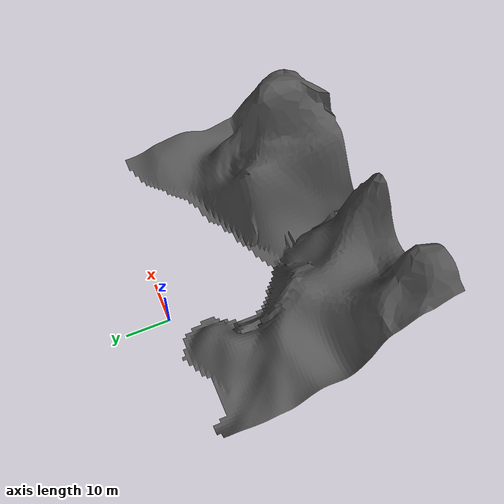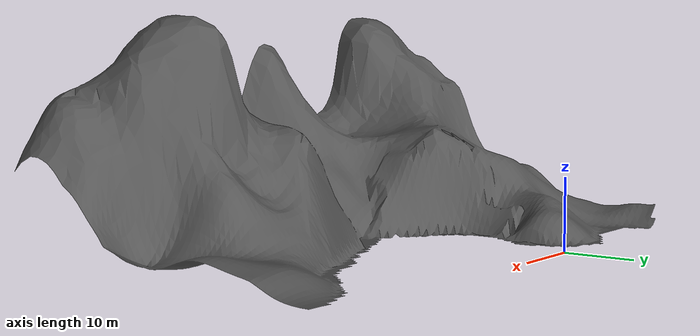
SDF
<?xml version="1.0"?>
<sdf version="1.5">
  <model name="landscape_model">
<static>
  true
</static>
    <link name="landscape_link">
      <inertial>
        <mass>0.390</mass>
        <inertia>
          <ixx>0.00058</ixx>
          <ixy>0</ixy>
          <ixz>0</ixz>
          <iyy>0.00058</iyy>
          <iyz>0</iyz>
          <izz>0.00019</izz>
        </inertia>
      </inertial>
      <collision name="landscape_collision">
        <geometry>
          <mesh>
            <uri>model://landscape/meshes/landscape.dae</uri>
          </mesh>
        </geometry>
        <surface>
          <friction>
            <ode>
              <mu>1.0</mu>
              <mu2>1.0</mu2>
            </ode>
          </friction>
          <contact>
            <ode>
              <kp>10000000.0</kp>
              <kd>1.0</kd>
              <min_depth>0.001</min_depth>
              <max_vel>0.1</max_vel>
            </ode>
          </contact>
        </surface>
      </collision>
      <visual name="landscape_visual">
        <geometry>
          <mesh>
            <uri>model://landscape/meshes/landscape.dae</uri>
          </mesh>
        </geometry>
      </visual>
    </link>
  </model>
</sdf>
